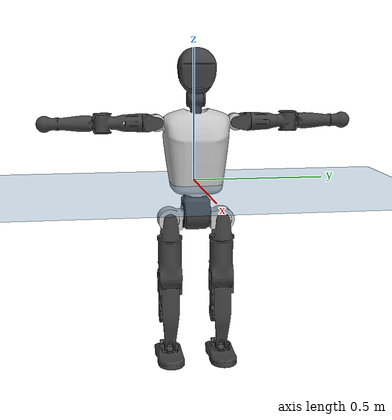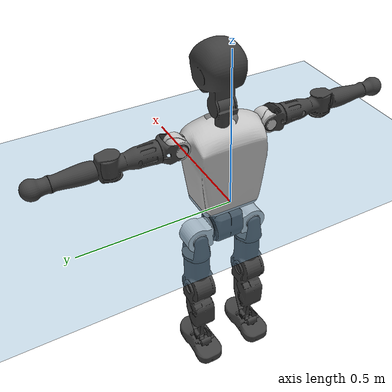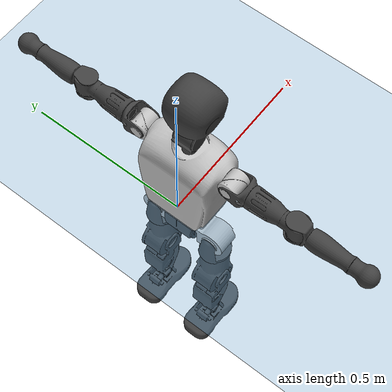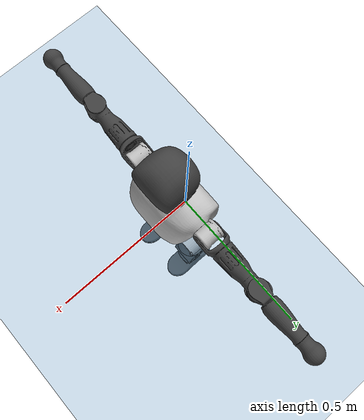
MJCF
<mujoco model="T1">
  <compiler angle="radian" assetdir="assets" balanceinertia="true" inertiafromgeom="false"/>

  <option timestep="0.005" density="1.2" viscosity="2e-05"/>

  <size nkey="1"/>

  <visual>
    <quality shadowsize="8192"/>
    <map shadowclip="0.5"/>
  </visual>

  <default>
    <default class="/">
      <joint armature="0.01" damping="0.01" frictionloss="0.1"/>
      <geom contype="0" conaffinity="0" group="1" solref="-1000 -80"/>
      <site size="0.01 0.005 0.005" group="5"/>
      <general forcelimited="true" biastype="affine" gainprm="25" biasprm="0 -25 -0.6"/>
      <default class="t1">
        <geom rgba="0.25 0.25 0.25 1"/>
        <default class="visual">
          <geom type="mesh" group="2"/>
        </default>
        <default class="collision">
          <geom group="3"/>
        </default>
        <default class="foot">
          <geom size="0.1115 0.05 0.015" type="box" condim="6" group="4" priority="1" solimp="0.015 1 0.015"/>
        </default>
        <default class="reward_collision_sphere">
          <geom group="5" rgba="1 0 0 1"/>
        </default>
      </default>
    </default>
  </default>

  <asset>
    <texture type="skybox" colorspace="auto" name="//unnamed_texture_0" builtin="gradient" rgb1="0.95 0.95 0.95" rgb2="0.95 0.95 0.95" width="100" height="600"/>
    <texture type="2d" colorspace="auto" name="texplane" builtin="checker" rgb1="0.345 0.575 0.748" rgb2="0.345 0.575 0.748" markrgb="1 1 1" width="512" height="512"/>
    <material name="MatPlane" class="/" texture="texplane" texuniform="true" texrepeat="2 2" specular="0.9"/>
    <mesh name="Trunk" class="/" file="Trunk.stl"/>
    <mesh name="H1" class="/" file="H1.stl"/>
    <mesh name="H2" class="/" file="H2.stl"/>
    <mesh name="AL1" class="/" file="AL1.stl"/>
    <mesh name="AL2" class="/" file="AL2.stl"/>
    <mesh name="AL3" class="/" file="AL3.stl"/>
    <mesh name="left_hand_link" class="/" file="left_hand_link.stl"/>
    <mesh name="AR1" class="/" file="AR1.stl"/>
    <mesh name="AR2" class="/" file="AR2.stl"/>
    <mesh name="AR3" class="/" file="AR3.stl"/>
    <mesh name="right_hand_link" class="/" file="right_hand_link.stl"/>
    <mesh name="Waist" class="/" file="Waist.stl"/>
    <mesh name="Hip_Pitch_Left" class="/" file="Hip_Pitch_Left.stl"/>
    <mesh name="Hip_Roll_Left" class="/" file="Hip_Roll_Left.stl"/>
    <mesh name="Hip_Yaw_Left" class="/" file="Hip_Yaw_Left.stl"/>
    <mesh name="Shank_Left" class="/" file="Shank_Left.stl"/>
    <mesh name="Ankle_Cross_Left" class="/" file="Ankle_Cross_Left.stl"/>
    <mesh name="left_foot_link" class="/" file="left_foot_link.stl"/>
    <mesh name="Hip_Pitch_Right" class="/" file="Hip_Pitch_Right.stl"/>
    <mesh name="Hip_Roll_Right" class="/" file="Hip_Roll_Right.stl"/>
    <mesh name="Hip_Yaw_Right" class="/" file="Hip_Yaw_Right.stl"/>
    <mesh name="Shank_Right" class="/" file="Shank_Right.stl"/>
    <mesh name="Ankle_Cross_Right" class="/" file="Ankle_Cross_Right.stl"/>
    <mesh name="right_foot_link" class="/" file="right_foot_link.stl"/>
  </asset>

  <worldbody>
    <geom name="floor" class="/" size="100 100 0.125" type="plane" group="0" material="MatPlane"/>
    <light name="toplight_shadow" class="/" pos="0 0 5" dir="0.0990148 0.0990148 -0.990148" type="directional" ambient="0.04 0.04 0.04" diffuse="0.55 0.55 0.55" specular="0.12 0.12 0.12"/>
    <light name="toplight_fill" class="/" pos="0 0 5" dir="0.0990148 0.0990148 -0.990148" type="directional" castshadow="false" ambient="0.04 0.04 0.04" diffuse="0.3 0.3 0.3" specular="0.08 0.08 0.08"/>
    <body name="trunk" childclass="t1" pos="-0.000188328 -4.97398e-06 -0.000863952" quat="1 -9.52775e-06 1.55849e-05 -4.4615e-05">
      <inertial pos="0.0476021 -6.7312e-05 0.108766" quat="0.999961 -0.000524754 -0.00877005 0.000249625" mass="9.91677" diaginertia="0.041758 0.0573787 0.0660496"/>
      <joint name="//unnamed_joint_0" type="free" armature="0" damping="0" frictionloss="0"/>
      <geom name="//unnamed_geom_1" class="visual" rgba="0.76 0.76 0.76 1" mesh="Trunk"/>
      <geom name="//unnamed_geom_2" class="collision" size="0.070896 0.094528 0.141792" pos="0.0514115 0 0.124096" type="box"/>
      <geom name="//unnamed_geom_3" class="reward_collision_sphere" size="0.108707" pos="0.0514115 0 0.103413"/>
      <geom name="//unnamed_geom_4" class="reward_collision_sphere" size="0.0141792" pos="0.0514115 0.0803122 0"/>
      <geom name="//unnamed_geom_5" class="reward_collision_sphere" size="0.0141792" pos="0.0514115 -0.0803122 0"/>
      <geom name="//unnamed_geom_6" class="reward_collision_sphere" size="0.0141792" pos="0.0514115 0.101099 0.186144"/>
      <geom name="//unnamed_geom_7" class="reward_collision_sphere" size="0.0141792" pos="0.0514115 -0.101099 0.186144"/>
      <site name="imu" pos="9.09844e-05 0.000606091 0.000488136" size="0.0094528"/>
      <camera name="track" pos="0 -1.8897 0" quat="0.707107 0.707107 0 0" mode="trackcom"/>
      <camera name="ego_camera" pos="0.104537 0 0.434336" quat="-0.5 -0.5 0.5 0.5"/>
      <body name="H1" pos="0.052805 -0.000730804 0.25097" quat="1 9.15916e-06 4.20049e-05 -1.16968e-05">
        <inertial pos="-0.00114892 -0.00193098 0.0596048" quat="0.764013 -0.012711 0.00143762 0.645075" mass="0.374206" diaginertia="0.000111972 0.000168051 0.000176502"/>
        <joint name="AAHead_yaw" pos="0 0 0" axis="0.000628182 -0.00387564 0.999992" stiffness="0.000239309" range="-1.56517 1.56736" armature="0.00942284" damping="0.00762225" frictionloss="0.0949015"/>
        <geom name="//unnamed_geom_8" class="visual" mesh="H1"/>
        <body name="H2" pos="-0.00011012 0.000655636 0.0636608" quat="1 -7.98837e-05 0.000219147 0.000183275">
          <inertial pos="0.00585085 0.0004924 0.102248" quat="0.988492 0.106395 -0.0750617 -0.0770068" mass="0.528884" diaginertia="0.00094003 0.00144866 0.00201796"/>
          <joint name="Head_pitch" pos="0 0 0" axis="0.00285575 -0.999992 0.00266526" range="-1.22842 0.365283" armature="0.00932843" damping="0.0106941" frictionloss="0.0949392"/>
          <geom name="//unnamed_geom_9" class="visual" mesh="H2"/>
          <geom name="//unnamed_geom_10" class="collision" size="0.0756224" pos="0.00856858 0 0.113755"/>
          <geom name="//unnamed_geom_11" class="reward_collision_sphere" size="0.0850752" pos="0.0171372 0 0.103413"/>
        </body>
      </body>
      <body name="AL1" pos="0.050596 0.101543 0.226829" quat="1 -9.83091e-05 0.000217919 0.000229053">
        <inertial pos="-0.000397079 0.04154 -0.000209094" quat="0.504045 0.495436 -0.504981 0.495455" mass="0.445985" diaginertia="0.00062492 0.000972447 0.000346031"/>
        <joint name="Left_Shoulder_Pitch" pos="0 0 0" axis="-0.000461372 1 -0.000655922" range="-3.31219 1.22611" armature="0.00928072" damping="0.00656337" frictionloss="0.0984228"/>
        <geom name="//unnamed_geom_12" class="visual" rgba="0.76 0.76 0.76 1" mesh="AL1"/>
        <body name="AL2" pos="0.00152736 0.0450249 -7.46218e-06" quat="1 2.25615e-05 6.34912e-06 4.38013e-05">
          <inertial pos="0.00319681 0.0352567 -0.000708768" quat="0.487733 0.511568 -0.488611 0.511541" mass="0.132921" diaginertia="0.000183551 0.000258292 0.000205136"/>
          <joint name="Left_Shoulder_Roll" pos="0 0 0" axis="-1 7.85394e-05 0.00018976" range="-1.57492 1.73799" armature="0.00947526" damping="0.00961471" frictionloss="0.0941017"/>
          <geom name="//unnamed_geom_13" class="visual" mesh="AL2"/>
          <body name="AL3" pos="-8.01463e-05 0.0576762 0.000689497" quat="1 3.0751e-05 -1.08098e-05 2.47088e-05">
            <inertial pos="-0.00121969 0.080655 -0.000198267" quat="0.705431 0.708776 -0.00191902 0.000376225" mass="0.858465" diaginertia="0.00598811 0.00950328 0.000729566"/>
            <joint name="Left_Elbow_Pitch" pos="0 0 0" axis="0.00118238 -0.999999 0.000957846" range="-2.27258 2.2536" armature="0.0092193" damping="0.00343294" frictionloss="0.0985861"/>
            <geom name="//unnamed_geom_14" class="visual" mesh="AL3"/>
            <geom name="//unnamed_geom_15" class="collision" size="0.0283584 0.070896" pos="0 0.0472425 0" quat="0.707105 0.707108 0 0" type="cylinder"/>
            <geom name="//unnamed_geom_16" class="reward_collision_sphere" size="0.0340301"/>
            <body name="left_hand_link" pos="0.00130771 0.138498 -2.50582e-05" quat="1 1.4993e-05 -0.000137539 -0.000114205">
              <inertial pos="0.000178808 0.103917 -0.000122858" quat="0.707845 0.706368 -9.34514e-05 -0.000274241" mass="0.274668" diaginertia="0.00374868 0.00606984 0.00025097"/>
              <joint name="Left_Elbow_Yaw" pos="0 0 0" axis="0.00681222 0.000490873 0.999977" stiffness="0.00103018" range="-2.43821 -0.002318" armature="0.00939459" damping="0.0102608" frictionloss="0.0980143"/>
              <geom name="//unnamed_geom_17" class="visual" mesh="left_hand_link"/>
              <geom name="//unnamed_geom_18" class="collision" size="0.0283584 0.082712" pos="0 0.12283 0" quat="0.707105 0.707108 0 0" type="cylinder"/>
              <geom name="//unnamed_geom_19" class="reward_collision_sphere" size="0.047264"/>
              <geom name="//unnamed_geom_20" class="reward_collision_sphere" size="0.0330848" pos="0 0.103933 0"/>
              <geom name="//unnamed_geom_21" class="reward_collision_sphere" size="0.0330848" pos="0 0.203143 0"/>
            </body>
          </body>
        </body>
      </body>
      <body name="AR1" pos="0.0493254 -0.100649 0.226464" quat="1 -5.03028e-06 0.000452562 -4.62576e-06">
        <inertial pos="-0.000935542 -0.0424782 -0.000899602" quat="0.502802 0.496886 -0.504751 0.4955" mass="0.444342" diaginertia="0.000635074 0.000979975 0.000346099"/>
        <joint name="Right_Shoulder_Pitch" pos="0 0 0" axis="0.000307344 -1 0.000634791" range="-1.2284 3.31018" armature="0.009547" damping="0.0051517" frictionloss="0.0985724"/>
        <geom name="//unnamed_geom_22" class="visual" rgba="0.76 0.76 0.76 1" mesh="AR1"/>
        <body name="AR2" pos="-0.00107494 -0.0440997 0.000201589" quat="1 -3.60173e-05 -4.52017e-05 -2.62809e-05">
          <inertial pos="0.00344009 -0.0358499 -0.000342695" quat="0.511437 0.488263 -0.511853 0.487891" mass="0.135625" diaginertia="0.00018449 0.000258765 0.000207016"/>
          <joint name="Right_Shoulder_Roll" pos="0 0 0" axis="-0.999991 -0.00218918 -0.00350467" stiffness="0.00273493" range="-1.75279 1.57434" armature="0.00980623" damping="0.00321412" frictionloss="0.0952843"/>
          <geom name="//unnamed_geom_23" class="visual" mesh="AR2"/>
          <body name="AR3" pos="-0.000215785 -0.0578039 0.000501466" quat="1 3.9683e-07 -1.80779e-06 -2.62074e-05">
            <inertial pos="-0.000303697 -0.0806003 -0.000567865" quat="0.708206 0.705994 0.00411825 0.000771228" mass="0.865312" diaginertia="0.00589884 0.00972319 0.000726133"/>
            <joint name="Right_Elbow_Pitch" pos="0 0 0" axis="8.98815e-05 0.999999 0.00162465" stiffness="0.000304583" range="-2.28778 2.28459" armature="0.00947323" damping="0.00416939" frictionloss="0.094558"/>
            <geom name="//unnamed_geom_24" class="visual" mesh="AR3"/>
            <geom name="//unnamed_geom_25" class="collision" size="0.0283584 0.070896" pos="0 -0.0472425 0" quat="0.707105 0.707108 0 0" type="cylinder"/>
            <geom name="//unnamed_geom_26" class="reward_collision_sphere" size="0.0340301"/>
            <body name="right_hand_link" pos="-0.000751134 -0.138828 -0.000483964" quat="1 -2.52095e-05 -0.000107916 1.02765e-05">
              <inertial pos="-0.000382194 -0.103726 0.00171852" quat="0.705948 0.708262 0.00135649 0.000459458" mass="0.275185" diaginertia="0.00378274 0.0061056 0.000256406"/>
              <joint name="Right_Elbow_Yaw" pos="0 0 0" axis="-0.00184603 0.000952954 0.999998" range="0.00117096 2.44168" armature="0.00936853" damping="0.0100326" frictionloss="0.0904414"/>
              <geom name="//unnamed_geom_27" class="visual" mesh="right_hand_link"/>
              <geom name="//unnamed_geom_28" class="collision" size="0.0283584 0.082712" pos="0 -0.12283 0" quat="0.707105 0.707108 0 0" type="cylinder"/>
              <geom name="//unnamed_geom_29" class="reward_collision_sphere" size="0.047264"/>
              <geom name="//unnamed_geom_30" class="reward_collision_sphere" size="0.0330848" pos="0 -0.103933 0"/>
              <geom name="//unnamed_geom_31" class="reward_collision_sphere" size="0.0330848" pos="0 -0.203143 0"/>
            </body>
          </body>
        </body>
      </body>
      <body name="Waist" pos="0.0536501 -0.00115992 -0.118965" quat="1 9.74895e-05 0.000198739 -0.000104052">
        <inertial pos="0.00134978 -0.00138657 0.00762165" quat="0.983602 -0.00056956 -0.180342 0.0020094" mass="2.16318" diaginertia="0.00246372 0.00395548 0.00555948"/>
        <joint name="Waist" pos="0 0 0" axis="-0.000593983 -0.000777734 1" range="-1.56491 1.56477" armature="0.0096549" damping="0.0116389" frictionloss="0.0937806"/>
        <geom name="//unnamed_geom_32" class="visual" mesh="Waist"/>
        <body name="Hip_Pitch_Left" pos="0.000535963 0.0993663 -0.000741987" quat="1 0.000460898 1.08335e-05 0.000278949">
          <inertial pos="0.00165765 -0.00718077 -0.0186215" quat="0.975123 0.22117 0.0146934 0.0018119" mass="0.856262" diaginertia="0.000831728 0.00109024 0.00148017"/>
          <joint name="Left_Hip_Pitch" pos="0 0 0" axis="-4.18974e-05 1 -5.02241e-05" stiffness="0.00195991" range="-1.8097 1.57211" armature="0.00985199" damping="0.0101879" frictionloss="0.0953613"/>
          <geom name="//unnamed_geom_33" class="visual" rgba="0.76 0.76 0.76 1" mesh="Hip_Pitch_Left"/>
          <body name="Hip_Roll_Left" pos="0.000486395 8.5549e-05 -0.0215297" quat="1 0.000198946 -0.000100682 -8.85007e-05">
            <inertial pos="0.000379978 0.000468956 -0.0555328" quat="0.706353 -0.0055069 -0.00571532 0.707815" mass="0.330444" diaginertia="0.000806216 0.00114456 0.000610579"/>
            <joint name="Left_Hip_Roll" pos="0 0 0" axis="-0.999993 -0.0033603 0.00150532" range="-1.57032 0.204396" armature="0.00907456" damping="0.00715383" frictionloss="0.094791"/>
            <geom name="//unnamed_geom_34" class="visual" mesh="Hip_Roll_Left"/>
            <geom name="//unnamed_geom_35" class="reward_collision_sphere" size="0.0519904"/>
            <body name="Hip_Yaw_Left" pos="0.00110727 -0.00120752 -0.0859072" quat="1 2.69664e-05 -0.000174342 4.12363e-05">
              <inertial pos="-0.00556244 0.00013886 -0.0925403" quat="0.698189 -0.0337458 -0.0306603 0.71446" mass="1.83442" diaginertia="0.0118865 0.0190551 0.00307487"/>
              <joint name="Left_Hip_Yaw" pos="0 0 0" axis="-0.000356855 0.00073025 -1" range="-0.999477 1.00549" armature="0.00940749" damping="0.0119677" frictionloss="0.0904317"/>
              <geom name="//unnamed_geom_36" class="visual" mesh="Hip_Yaw_Left"/>
              <geom name="//unnamed_geom_37" class="collision" size="0.047264 0.0756224" type="cylinder"/>
              <body name="Shank_Left" pos="-0.0111551 0.000505304 -0.138228" quat="1 -0.000120498 -0.000384909 -7.79865e-05">
                <inertial pos="-0.00519721 0.0011482 -0.128738" quat="0.9976 0.00232981 -0.0248874 0.0645701" mass="1.446" diaginertia="0.0159244 0.0256416 0.00218574"/>
                <joint name="Left_Knee_Pitch" pos="0 0 0" axis="0.00138576 0.999998 -0.00173449" range="-0.00630617 2.35057" armature="0.00907714" damping="0.0139978" frictionloss="0.0943764"/>
                <geom name="//unnamed_geom_38" class="visual" mesh="Shank_Left"/>
                <geom name="//unnamed_geom_39" class="collision" size="0.047264 0.070896" pos="0 0 -0.124096" type="cylinder"/>
                <geom name="//unnamed_geom_40" class="reward_collision_sphere" size="0.0614432"/>
                <body name="Ankle_Cross_Left" pos="-0.000667931 0.000592279 -0.289505" quat="1 2.15248e-05 -2.59272e-06 0.000149728">
                  <inertial pos="-0.00280607 -0.000164283 -0.0079633" quat="0.441168 0.549679 0.554282 0.442714" mass="0.0626491" diaginertia="1.33457e-05 1.9445e-05 1.35068e-05"/>
                  <joint name="Left_Ankle_Pitch" pos="0 0 0" axis="0.00012051 1 0.000186939" range="-0.873991 0.349098" armature="0.00909012" damping="0.00333551" frictionloss="0.0908002"/>
                  <geom name="//unnamed_geom_41" class="visual" mesh="Ankle_Cross_Left"/>
                  <body name="left_foot_link" pos="0.000464561 0.000158944 -0.0122615" quat="1 -2.10128e-06 -0.000128449 1.18444e-05">
                    <inertial pos="-0.000564815 0.000676023 -0.00968139" quat="0.00213698 0.620074 0.00299256 0.784535" mass="0.583243" diaginertia="0.00126262 0.00181308 0.00262663"/>
                    <joint name="Left_Ankle_Roll" pos="0 0 0" axis="-0.999982 -0.00201382 -0.00558219" range="-0.438272 0.444585" armature="0.00941548" damping="0.00866197" frictionloss="0.0979908"/>
                    <geom name="//unnamed_geom_42" class="visual" mesh="left_foot_link"/>
                    <geom name="left_foot" class="foot" size="0.102348 0.0478025 0.0149331" pos="0.00856858 0 -0.015512"/>
                    <geom name="//unnamed_geom_44" class="reward_collision_sphere" size="0.0491546" pos="0.00856858 0 -0.015512"/>
                    <geom name="//unnamed_geom_45" class="reward_collision_sphere" size="0.0283584" pos="0.0814015 -0.0217315 -0.015512"/>
                    <geom name="//unnamed_geom_46" class="reward_collision_sphere" size="0.0283584" pos="-0.05998 -0.0217315 -0.015512"/>
                    <site name="left_foot" class="foot" pos="0.00856858 0 -0.015512" size="0.0094528"/>
                  </body>
                </body>
              </body>
            </body>
          </body>
        </body>
        <body name="Hip_Pitch_Right" pos="-0.00052382 -0.0996806 -0.000135707" quat="1 -0.000175055 -0.000389428 8.38824e-05">
          <inertial pos="0.000367483 0.00725739 -0.0181068" quat="0.973685 -0.227422 0.0141072 -0.0042149" mass="0.859081" diaginertia="0.000829286 0.00108842 0.00146712"/>
          <joint name="Right_Hip_Pitch" pos="0 0 0" axis="0.00162049 -0.999998 0.00138775" range="-1.57635 1.81474" armature="0.00954176" damping="0.00842376" frictionloss="0.0947907"/>
          <geom name="//unnamed_geom_47" class="visual" rgba="0.76 0.76 0.76 1" mesh="Hip_Pitch_Right"/>
          <body name="Hip_Roll_Right" pos="-0.000964944 0.000152619 -0.0204333" quat="1 0.000230761 -0.000127811 -3.25766e-05">
            <inertial pos="0.00150418 -0.000868514 -0.0554751" quat="0.708738 -0.00323959 -0.0040312 0.705453" mass="0.330169" diaginertia="0.000809147 0.00114634 0.000615887"/>
            <joint name="Right_Hip_Roll" pos="0 0 0" axis="-0.999997 -0.00201458 0.00145687" range="-0.207673 1.57463" armature="0.0098141" damping="0.00716792" frictionloss="0.0942063"/>
            <geom name="//unnamed_geom_48" class="visual" mesh="Hip_Roll_Right"/>
            <geom name="//unnamed_geom_49" class="reward_collision_sphere" size="0.0519904"/>
            <body name="Hip_Yaw_Right" pos="0.000719945 0.000682991 -0.0848349" quat="1 0.00010812 0.000277382 1.96187e-05">
              <inertial pos="-0.00485869 -0.000668887 -0.0927501" quat="0.716469 -0.0310369 -0.0316323 0.69621" mass="1.82894" diaginertia="0.0119604 0.0191377 0.00307864"/>
              <joint name="Right_Hip_Yaw" pos="0 0 0" axis="0.000834703 0.00539875 -0.999985" stiffness="0.0025335" range="-1.01323 1.02079" armature="0.00933066" damping="0.00997383" frictionloss="0.0946477"/>
              <geom name="//unnamed_geom_50" class="visual" mesh="Hip_Yaw_Right"/>
              <geom name="//unnamed_geom_51" class="collision" size="0.047264 0.0756224" type="cylinder"/>
              <body name="Shank_Right" pos="-0.0119564 -0.0010601 -0.139793" quat="1 1.27895e-05 1.73468e-05 -3.18641e-05">
                <inertial pos="-0.00480836 0.000276179 -0.126507" quat="0.999208 0.00203391 -0.0234592 -0.0320782" mass="1.54024" diaginertia="0.01638 0.0263695 0.00234063"/>
                <joint name="Right_Knee_Pitch" pos="0 0 0" axis="-0.00745165 -0.999957 -0.00559277" range="-2.34437 0.00121745" armature="0.00907575" damping="0.00849719" frictionloss="0.09095"/>
                <geom name="//unnamed_geom_52" class="visual" mesh="Shank_Right"/>
                <geom name="//unnamed_geom_53" class="collision" size="0.047264 0.070896" pos="0 0 -0.124096" type="cylinder"/>
                <geom name="//unnamed_geom_54" class="reward_collision_sphere" size="0.0614432"/>
                <body name="Ankle_Cross_Right" pos="0.000895188 -0.000823513 -0.289447" quat="1 -6.43055e-05 -1.59927e-06 1.78954e-05">
                  <inertial pos="-0.00359616 0.000284209 -0.00833917" quat="0.442545 0.55105 0.551121 0.443581" mass="0.0615528" diaginertia="1.34195e-05 1.93135e-05 1.33625e-05"/>
                  <joint name="Right_Ankle_Pitch" pos="0 0 0" axis="-0.000705012 -0.999999 0.00125911" stiffness="0.000479666" range="-0.339449 0.872352" armature="0.00959215" damping="0.00361593" frictionloss="0.094372"/>
                  <geom name="//unnamed_geom_55" class="visual" mesh="Ankle_Cross_Right"/>
                  <body name="right_foot_link" pos="0.000175708 -0.000965048 -0.0119462" quat="1 0.000126787 1.48893e-05 -0.00031516">
                    <inertial pos="0.000757531 -0.000183544 -0.00942565" quat="0.000766288 0.621216 -0.00128438 0.783638" mass="0.579054" diaginertia="0.00124687 0.00181705 0.00258465"/>
                    <joint name="Right_Ankle_Roll" pos="0 0 0" axis="-1 0.0007081 0.000118429" range="-0.454098 0.449764" armature="0.00957888" damping="0.00747484" frictionloss="0.0967703"/>
                    <geom name="//unnamed_geom_56" class="visual" mesh="right_foot_link"/>
                    <geom name="right_foot" class="foot" size="0.097746 0.0460336 0.014335" pos="0.00856858 0 -0.015512"/>
                    <geom name="//unnamed_geom_58" class="reward_collision_sphere" size="0.0378112"/>
                    <geom name="//unnamed_geom_59" class="reward_collision_sphere" size="0.0283584" pos="0.00856858 0 -0.015512"/>
                    <geom name="//unnamed_geom_60" class="reward_collision_sphere" size="0.0283584" pos="0.0814015 0.0217315 -0.015512"/>
                    <geom name="//unnamed_geom_61" class="reward_collision_sphere" size="0.0283584" pos="-0.05998 0.0217315 -0.015512"/>
                    <site name="right_foot" class="foot" pos="0.00856858 0 -0.015512" size="0.0094528"/>
                  </body>
                </body>
              </body>
            </body>
          </body>
        </body>
      </body>
    </body>
  </worldbody>

  <contact>
    <pair class="/" geom1="floor" geom2="left_foot" name="//unnamed_contact_0"/>
    <pair class="/" geom1="floor" geom2="right_foot" name="//unnamed_contact_1"/>
  </contact>

  <actuator>
    <general name="AAHead_yaw" class="/" joint="AAHead_yaw" forcerange="-6.53835 6.53835" gainprm="23.5079" biasprm="0 -23.5079 -0.559558"/>
    <general name="Head_pitch" class="/" joint="Head_pitch" forcerange="-6.73589 6.73589" gainprm="23.5079" biasprm="0 -23.5079 -0.559558"/>
    <general name="Left_Shoulder_Pitch" class="/" joint="Left_Shoulder_Pitch" forcerange="-16.8379 16.8379" gainprm="23.5079" biasprm="0 -23.5079 -0.559558"/>
    <general name="Left_Shoulder_Roll" class="/" joint="Left_Shoulder_Roll" forcerange="-17.3392 17.3392" gainprm="23.5079" biasprm="0 -23.5079 -0.559558"/>
    <general name="Left_Elbow_Pitch" class="/" joint="Left_Elbow_Pitch" forcerange="-16.9614 16.9614" gainprm="23.5079" biasprm="0 -23.5079 -0.559558"/>
    <general name="Left_Elbow_Yaw" class="/" joint="Left_Elbow_Yaw" forcerange="-16.9445 16.9445" gainprm="23.5079" biasprm="0 -23.5079 -0.559558"/>
    <general name="Right_Shoulder_Pitch" class="/" joint="Right_Shoulder_Pitch" forcerange="-17.0561 17.0561" gainprm="23.5079" biasprm="0 -23.5079 -0.559558"/>
    <general name="Right_Shoulder_Roll" class="/" joint="Right_Shoulder_Roll" forcerange="-17.1112 17.1112" gainprm="23.5079" biasprm="0 -23.5079 -0.559558"/>
    <general name="Right_Elbow_Pitch" class="/" joint="Right_Elbow_Pitch" forcerange="-17.0653 17.0653" gainprm="23.5079" biasprm="0 -23.5079 -0.559558"/>
    <general name="Right_Elbow_Yaw" class="/" joint="Right_Elbow_Yaw" forcerange="-16.8278 16.8278" gainprm="23.5079" biasprm="0 -23.5079 -0.559558"/>
    <general name="Waist" class="/" joint="Waist" forcerange="-28.6068 28.6068" gainprm="23.5079" biasprm="0 -23.5079 -0.559558"/>
    <general name="Left_Hip_Pitch" class="/" joint="Left_Hip_Pitch" forcerange="-42.5674 42.5674" gainprm="23.5079" biasprm="0 -23.5079 -0.559558"/>
    <general name="Left_Hip_Roll" class="/" joint="Left_Hip_Roll" forcerange="-28.1513 28.1513" gainprm="23.5079" biasprm="0 -23.5079 -0.559558"/>
    <general name="Left_Hip_Yaw" class="/" joint="Left_Hip_Yaw" forcerange="-28.1885 28.1885" gainprm="23.5079" biasprm="0 -23.5079 -0.559558"/>
    <general name="Left_Knee_Pitch" class="/" joint="Left_Knee_Pitch" forcerange="-55.8705 55.8705" gainprm="23.5079" biasprm="0 -23.5079 -0.559558"/>
    <general name="Left_Ankle_Pitch" class="/" joint="Left_Ankle_Pitch" forcerange="-18.9898 18.9898" gainprm="23.5079" biasprm="0 -23.5079 -0.559558"/>
    <general name="Left_Ankle_Roll" class="/" joint="Left_Ankle_Roll" forcerange="-14.2207 14.2207" gainprm="23.5079" biasprm="0 -23.5079 -0.559558"/>
    <general name="Right_Hip_Pitch" class="/" joint="Right_Hip_Pitch" forcerange="-43.0199 43.0199" gainprm="23.5079" biasprm="0 -23.5079 -0.559558"/>
    <general name="Right_Hip_Roll" class="/" joint="Right_Hip_Roll" forcerange="-28.3032 28.3032" gainprm="23.5079" biasprm="0 -23.5079 -0.559558"/>
    <general name="Right_Hip_Yaw" class="/" joint="Right_Hip_Yaw" forcerange="-27.7522 27.7522" gainprm="23.5079" biasprm="0 -23.5079 -0.559558"/>
    <general name="Right_Knee_Pitch" class="/" joint="Right_Knee_Pitch" forcerange="-56.3939 56.3939" gainprm="23.5079" biasprm="0 -23.5079 -0.559558"/>
    <general name="Right_Ankle_Pitch" class="/" joint="Right_Ankle_Pitch" forcerange="-19.2922 19.2922" gainprm="23.5079" biasprm="0 -23.5079 -0.559558"/>
    <general name="Right_Ankle_Roll" class="/" joint="Right_Ankle_Roll" forcerange="-14.2138 14.2138" gainprm="23.5079" biasprm="0 -23.5079 -0.559558"/>
  </actuator>

  <sensor>
    <gyro site="imu" name="imu_angular_velocity"/>
    <velocimeter site="imu" name="imu_linear_velocity"/>
    <framelinvel objtype="site" objname="left_foot" name="left_foot_global_linear_velocity"/>
    <framelinvel objtype="site" objname="right_foot" name="right_foot_global_linear_velocity"/>
  </sensor>

  <keyframe>
    <key name="home" qpos="0 0 0.6385 1 0 0 0 0 0 0 1.4 0 -0.4 0 -1.4 0 0.4 0 -0.4 0 0 0.8 -0.4 0 0.4 0 0 -0.8 0.4 0"/>
  </keyframe>
</mujoco>
